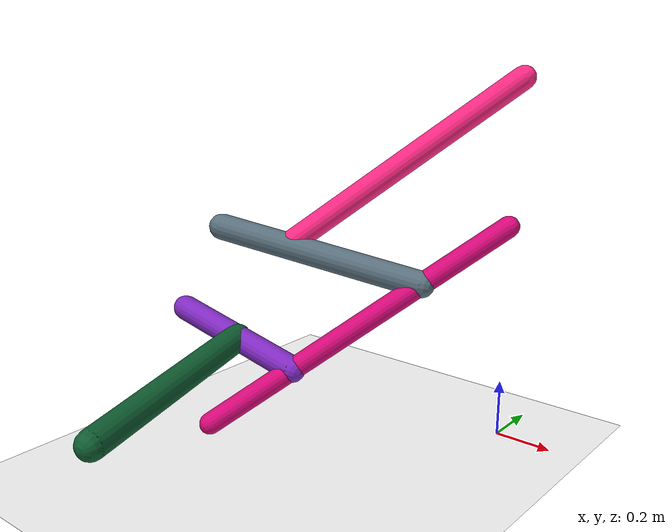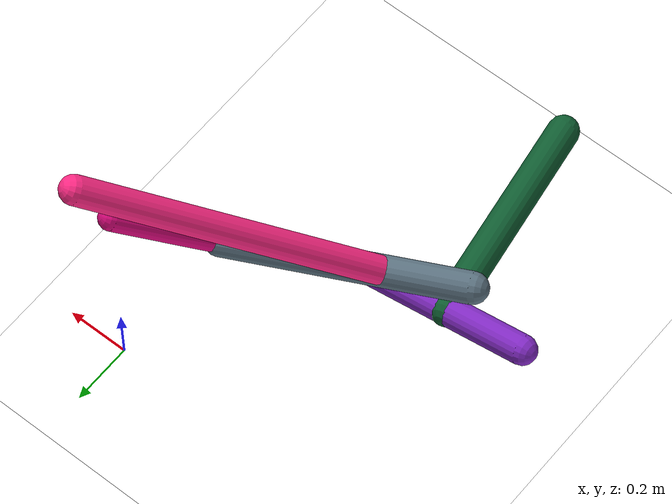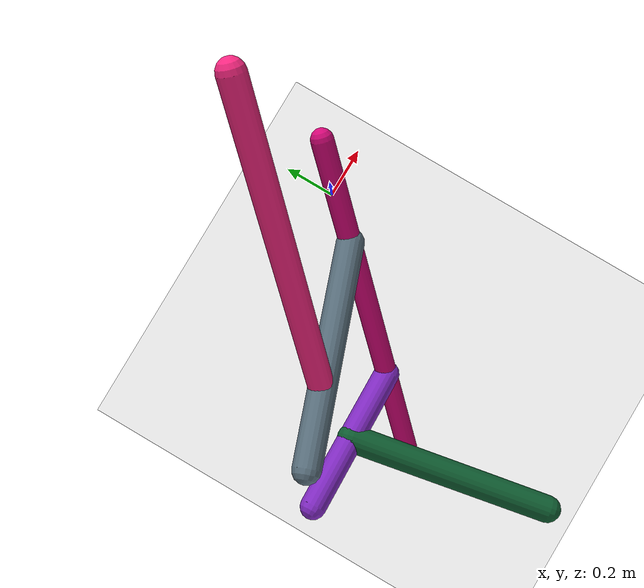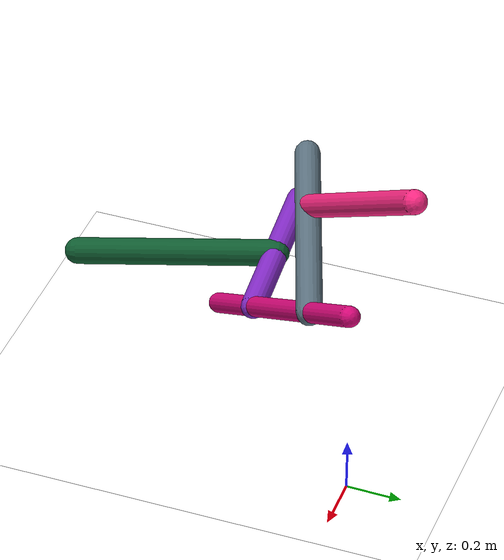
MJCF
<mujoco model="morphology">
  <option timestep="0.01"/>
  <default>
    <default class="/"/>
    <default class="0/"/>
    <default class="0/1/"/>
    <default class="0/1/2/"/>
    <default class="0/3/"/>
    <default class="0/3/4/"/>
  </default>
  <asset>
    <texture name="texplane" type="2d" builtin="checker" rgb1="0.10000000000000001 0.20000000000000001 0.29999999999999999" rgb2="0.20000000000000001 0.29999999999999999 0.40000000000000002" width="300" height="300"/>
    <material name="MatPlane" class="/" texture="texplane" texrepeat="20 20" specular="1" shininess="1" reflectance="0.5"/>
  </asset>
  <worldbody>
    <light name="//unnamed_light_0" class="/" directional="true" pos="0 0 1.5" dir="0 0 -1.3" cutoff="100" exponent="1" diffuse="1 1 1" specular="0.10000000000000001 0.10000000000000001 0.10000000000000001"/>
    <geom name="ground" class="/" type="plane" size="15 15 0.5" material="MatPlane" rgba="1 1 1 1"/>
    <site name="body" class="/" size="9.9999999999999995e-07 9.9999999999999995e-07 9.9999999999999995e-07" pos="0 0 0.75975517034530637"/>
    <body pos="0 0 0.75975517034530637" name="0/">
      <freejoint name="0/"/>
      <geom name="0/geom" class="0/" type="capsule" contype="1" conaffinity="1" condim="3" size="0.037233980146118825" rgba="0.85424341127713688 0.030176063946335652 0.48224635282088457 1" friction="0.59999999999999998 0.10000000000000001 0.10000000000000001" fromto="0 0 0 -0.69440785073192468 -0.74151567911975347 -0.65975516129407208"/>
      <site name="0/end0" class="0/" size="0.0050000000000000001" pos="-0.69440785073192468 -0.74151567911975347 -0.65975516129407208"/>
      <site name="0/attach1" class="0/" size="9.9999999999999995e-07 9.9999999999999995e-07 9.9999999999999995e-07" pos="-0.20160347802481843 -0.21528002565482054 -0.19154295997880061"/>
      <body pos="-0.20160347802481843 -0.21528002565482054 -0.19154295997880061" name="0/1/">
        <geom name="0/1/geom" class="0/1/" type="capsule" contype="1" conaffinity="1" condim="3" size="0.046682365259753535" rgba="0.35868070958453713 0.44517023140111289 0.50018516704568361 1" friction="0.59999999999999998 0.10000000000000001 0.10000000000000001" fromto="0 0 0 -0.68884285917370314 -0.25649343173781008 0.1440546523639048"/>
        <site name="0/1/end1" class="0/1/" size="0.0050000000000000001" pos="-0.68884285917370314 -0.25649343173781008 0.1440546523639048"/>
        <site name="0/1/attach2" class="0/1/" size="9.9999999999999995e-07 9.9999999999999995e-07 9.9999999999999995e-07" pos="-0.45416840338696068 -0.16911144656611501 0.09497822412365356"/>
        <body pos="-0.45416840338696068 -0.16911144656611501 0.09497822412365356" name="0/1/2/">
          <joint name="0/1/2/joint/" class="0/1/" type="hinge" axis="-1.3877787807814457e-17 0.48968553913579865 0.87189911845424084" limited="true" range="-58.104057477086499 58.104057477086499"/>
          <geom name="0/1/2/geom" class="0/1/2/" type="capsule" contype="1" conaffinity="1" condim="3" size="0.042542252858520466" rgba="0.9988554296500991 0.15773605517143419 0.52140905997088616 1" friction="0.59999999999999998 0.10000000000000001 0.10000000000000001" fromto="0 0 0 0.58182117699491864 0.57884773954303448 0.5776837622226525"/>
          <site name="0/1/2/end2" class="0/1/2/" size="0.0050000000000000001" pos="0.58182117699491864 0.57884773954303448 0.5776837622226525"/>
        </body>
      </body>
      <site name="0/attach3" class="0/" size="9.9999999999999995e-07 9.9999999999999995e-07 9.9999999999999995e-07" pos="-0.50115641114780818 -0.53515428456892111 -0.47614745213763987"/>
      <body pos="-0.50115641114780818 -0.53515428456892111 -0.47614745213763987" name="0/3/">
        <joint name="0/3/joint/" class="0/" type="hinge" axis="0 1 0" limited="true" range="-48.997880119267933 48.997880119267933"/>
        <geom name="0/3/geom" class="0/3/" type="capsule" contype="1" conaffinity="1" condim="3" size="0.045132589015088674" rgba="0.51073676438771598 0.16486698473260231 0.77104475689165053 1" friction="0.59999999999999998 0.10000000000000001 0.10000000000000001" fromto="0 0 0 -0.51647843250421754 -0.012747185655173965 0.11378766909406335"/>
        <site name="0/3/end3" class="0/3/" size="0.0050000000000000001" pos="-0.51647843250421754 -0.012747185655173965 0.11378766909406335"/>
        <site name="0/3/attach4" class="0/3/" size="9.9999999999999995e-07 9.9999999999999995e-07 9.9999999999999995e-07" pos="-0.25532563299972527 -0.0063016827839093414 0.056251930014072291"/>
        <body pos="-0.25532563299972527 -0.0063016827839093414 0.056251930014072291" name="0/3/4/">
          <joint name="0/3/4/joint/" class="0/3/" type="hinge" axis="0.21643770334067425 -0.10869075528287617 0.97022731372016757" limited="true" range="-35.295858661879642 35.295858661879642"/>
          <geom name="0/3/4/geom" class="0/3/4/" type="capsule" contype="1" conaffinity="1" condim="3" size="0.049208458907460173" rgba="0.059602059945219055 0.36589106093766655 0.19379057325014992 1" friction="0.59999999999999998 0.10000000000000001 0.10000000000000001" fromto="0 0 0 0.13278466410857559 -0.72489353557457759 -0.087830160459328677"/>
          <site name="0/3/4/end4" class="0/3/4/" size="0.0050000000000000001" pos="0.13278466410857559 -0.72489353557457759 -0.087830160459328677"/>
        </body>
      </body>
      <camera name="0/iso" class="0/" mode="trackcom" pos="-2.2999999999999998 -2.2999999999999998 1" xyaxes="0.45000000000000001 -0.45000000000000001 0 0.29999999999999999 0.14999999999999999 0.93999999999999995"/>
    </body>
  </worldbody>
  <actuator>
    <motor name="0/1/2/motor" class="0/1/2/" ctrllimited="true" ctrlrange="-1 1" gear="51" joint="0/1/2/joint/"/>
    <motor name="0/3/motor" class="0/3/" ctrllimited="true" ctrlrange="-1 1" gear="94" joint="0/3/joint/"/>
    <motor name="0/3/4/motor" class="0/3/4/" ctrllimited="true" ctrlrange="-1 1" gear="68" joint="0/3/4/joint/"/>
  </actuator>
  <sensor>
    <subtreelinvel name="velocity" body="0/"/>
  </sensor>
</mujoco>
